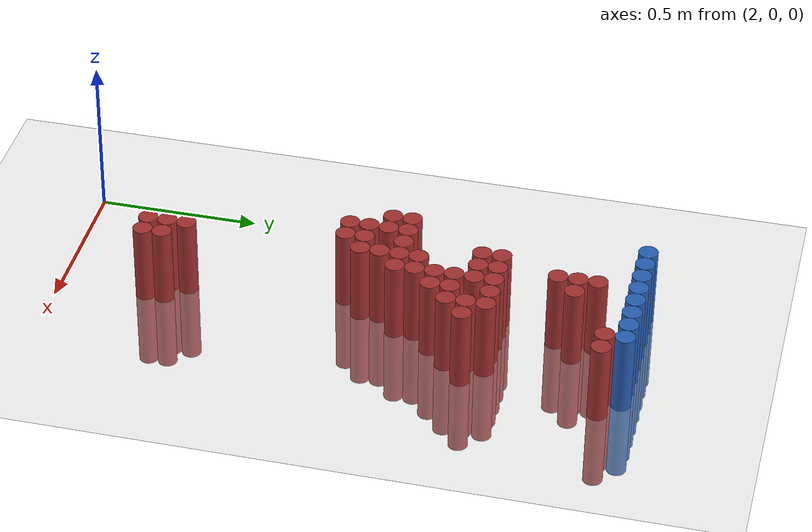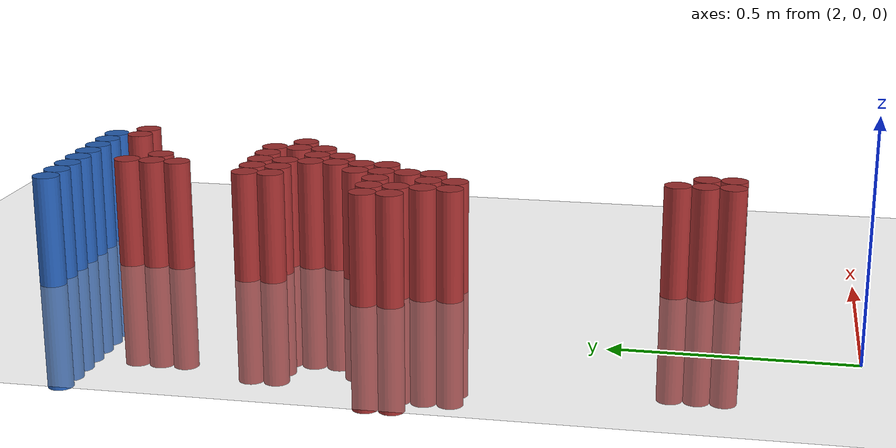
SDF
<sdf version="1.6">
 <world name="default">
  <model name="ground_plane">
   <static>1</static>
   <link name="link">
    <collision name="collision">
     <geometry><plane><normal>0 0 1</normal><size>100 100</size></plane></geometry>
     <surface><friction><ode><mu>100</mu><mu2>50</mu2></ode></friction></surface>
    </collision>
    <visual name="visual">
     <cast_shadows>0</cast_shadows>
     <geometry><plane><normal>0 0 1</normal><size>100 100</size></plane></geometry>
     <material>
      <script><uri>file://media/materials/scripts/gazebo.material</uri><name>Gazebo/Grey</name></script>
     </material>
    </visual>
   </link>
  </model>
  <model name="unit_cylinder_97">
   <static>1</static>
   <pose>2.190000 1.770000 0.000000 0.000000 0.000000 0.000000</pose>
   <link name="link">
    <inertial>
     <mass>1</mass>
     <inertia><ixx>0.145833</ixx><ixy>0</ixy><ixz>0</ixz><iyy>0.145833</iyy><iyz>0</iyz><izz>0.125</izz></inertia>
    </inertial>
    <collision name="collision">
     <geometry><cylinder><radius>0.030000</radius><length>0.5</length></cylinder></geometry>
    </collision>
    <visual name="visual">
     <geometry><cylinder><radius>0.030000</radius><length>0.5</length></cylinder></geometry>
     <material>
      <ambient>0.152000 0.379000 0.720000 1</ambient>
      <diffuse>0.152000 0.379000 0.720000 1</diffuse>
     </material>
     <material>
      <script><name>Gazebo/Grey</name><uri>file://media/materials/scripts/gazebo.material</uri></script>
     </material>
    </visual>
   </link>
  </model>
  <model name="unit_cylinder_98">
   <static>1</static>
   <pose>2.250000 1.770000 0.000000 0.000000 0.000000 0.000000</pose>
   <link name="link">
    <inertial>
     <mass>1</mass>
     <inertia><ixx>0.145833</ixx><ixy>0</ixy><ixz>0</ixz><iyy>0.145833</iyy><iyz>0</iyz><izz>0.125</izz></inertia>
    </inertial>
    <collision name="collision">
     <geometry><cylinder><radius>0.030000</radius><length>0.5</length></cylinder></geometry>
    </collision>
    <visual name="visual">
     <geometry><cylinder><radius>0.030000</radius><length>0.5</length></cylinder></geometry>
     <material>
      <ambient>0.152000 0.379000 0.720000 1</ambient>
      <diffuse>0.152000 0.379000 0.720000 1</diffuse>
     </material>
     <material>
      <script><name>Gazebo/Grey</name><uri>file://media/materials/scripts/gazebo.material</uri></script>
     </material>
    </visual>
   </link>
  </model>
  <model name="unit_cylinder_99">
   <static>1</static>
   <pose>2.310000 1.770000 0.000000 0.000000 0.000000 0.000000</pose>
   <link name="link">
    <inertial>
     <mass>1</mass>
     <inertia><ixx>0.145833</ixx><ixy>0</ixy><ixz>0</ixz><iyy>0.145833</iyy><iyz>0</iyz><izz>0.125</izz></inertia>
    </inertial>
    <collision name="collision">
     <geometry><cylinder><radius>0.030000</radius><length>0.5</length></cylinder></geometry>
    </collision>
    <visual name="visual">
     <geometry><cylinder><radius>0.030000</radius><length>0.5</length></cylinder></geometry>
     <material>
      <ambient>0.152000 0.379000 0.720000 1</ambient>
      <diffuse>0.152000 0.379000 0.720000 1</diffuse>
     </material>
     <material>
      <script><name>Gazebo/Grey</name><uri>file://media/materials/scripts/gazebo.material</uri></script>
     </material>
    </visual>
   </link>
  </model>
  <model name="unit_cylinder_100">
   <static>1</static>
   <pose>2.370000 1.770000 0.000000 0.000000 0.000000 0.000000</pose>
   <link name="link">
    <inertial>
     <mass>1</mass>
     <inertia><ixx>0.145833</ixx><ixy>0</ixy><ixz>0</ixz><iyy>0.145833</iyy><iyz>0</iyz><izz>0.125</izz></inertia>
    </inertial>
    <collision name="collision">
     <geometry><cylinder><radius>0.030000</radius><length>0.5</length></cylinder></geometry>
    </collision>
    <visual name="visual">
     <geometry><cylinder><radius>0.030000</radius><length>0.5</length></cylinder></geometry>
     <material>
      <ambient>0.152000 0.379000 0.720000 1</ambient>
      <diffuse>0.152000 0.379000 0.720000 1</diffuse>
     </material>
     <material>
      <script><name>Gazebo/Grey</name><uri>file://media/materials/scripts/gazebo.material</uri></script>
     </material>
    </visual>
   </link>
  </model>
  <model name="unit_cylinder_101">
   <static>1</static>
   <pose>2.430000 1.770000 0.000000 0.000000 0.000000 0.000000</pose>
   <link name="link">
    <inertial>
     <mass>1</mass>
     <inertia><ixx>0.145833</ixx><ixy>0</ixy><ixz>0</ixz><iyy>0.145833</iyy><iyz>0</iyz><izz>0.125</izz></inertia>
    </inertial>
    <collision name="collision">
     <geometry><cylinder><radius>0.030000</radius><length>0.5</length></cylinder></geometry>
    </collision>
    <visual name="visual">
     <geometry><cylinder><radius>0.030000</radius><length>0.5</length></cylinder></geometry>
     <material>
      <ambient>0.152000 0.379000 0.720000 1</ambient>
      <diffuse>0.152000 0.379000 0.720000 1</diffuse>
     </material>
     <material>
      <script><name>Gazebo/Grey</name><uri>file://media/materials/scripts/gazebo.material</uri></script>
     </material>
    </visual>
   </link>
  </model>
  <model name="unit_cylinder_102">
   <static>1</static>
   <pose>2.490000 1.770000 0.000000 0.000000 0.000000 0.000000</pose>
   <link name="link">
    <inertial>
     <mass>1</mass>
     <inertia><ixx>0.145833</ixx><ixy>0</ixy><ixz>0</ixz><iyy>0.145833</iyy><iyz>0</iyz><izz>0.125</izz></inertia>
    </inertial>
    <collision name="collision">
     <geometry><cylinder><radius>0.030000</radius><length>0.5</length></cylinder></geometry>
    </collision>
    <visual name="visual">
     <geometry><cylinder><radius>0.030000</radius><length>0.5</length></cylinder></geometry>
     <material>
      <ambient>0.152000 0.379000 0.720000 1</ambient>
      <diffuse>0.152000 0.379000 0.720000 1</diffuse>
     </material>
     <material>
      <script><name>Gazebo/Grey</name><uri>file://media/materials/scripts/gazebo.material</uri></script>
     </material>
    </visual>
   </link>
  </model>
  <model name="unit_cylinder_103">
   <static>1</static>
   <pose>2.550000 1.770000 0.000000 0.000000 0.000000 0.000000</pose>
   <link name="link">
    <inertial>
     <mass>1</mass>
     <inertia><ixx>0.145833</ixx><ixy>0</ixy><ixz>0</ixz><iyy>0.145833</iyy><iyz>0</iyz><izz>0.125</izz></inertia>
    </inertial>
    <collision name="collision">
     <geometry><cylinder><radius>0.030000</radius><length>0.5</length></cylinder></geometry>
    </collision>
    <visual name="visual">
     <geometry><cylinder><radius>0.030000</radius><length>0.5</length></cylinder></geometry>
     <material>
      <ambient>0.152000 0.379000 0.720000 1</ambient>
      <diffuse>0.152000 0.379000 0.720000 1</diffuse>
     </material>
     <material>
      <script><name>Gazebo/Grey</name><uri>file://media/materials/scripts/gazebo.material</uri></script>
     </material>
    </visual>
   </link>
  </model>
  <model name="unit_cylinder_104">
   <static>1</static>
   <pose>2.610000 1.770000 0.000000 0.000000 0.000000 0.000000</pose>
   <link name="link">
    <inertial>
     <mass>1</mass>
     <inertia><ixx>0.145833</ixx><ixy>0</ixy><ixz>0</ixz><iyy>0.145833</iyy><iyz>0</iyz><izz>0.125</izz></inertia>
    </inertial>
    <collision name="collision">
     <geometry><cylinder><radius>0.030000</radius><length>0.5</length></cylinder></geometry>
    </collision>
    <visual name="visual">
     <geometry><cylinder><radius>0.030000</radius><length>0.5</length></cylinder></geometry>
     <material>
      <ambient>0.152000 0.379000 0.720000 1</ambient>
      <diffuse>0.152000 0.379000 0.720000 1</diffuse>
     </material>
     <material>
      <script><name>Gazebo/Grey</name><uri>file://media/materials/scripts/gazebo.material</uri></script>
     </material>
    </visual>
   </link>
  </model>
  <model name="unit_cylinder_125">
   <static>1</static>
   <pose>2.610000 1.710000 0.000000 0.000000 0.000000 0.000000</pose>
   <link name="link">
    <inertial>
     <mass>1</mass>
     <inertia><ixx>0.145833</ixx><ixy>0</ixy><ixz>0</ixz><iyy>0.145833</iyy><iyz>0</iyz><izz>0.125</izz></inertia>
    </inertial>
    <collision name="collision">
     <geometry><cylinder><radius>0.030000</radius><length>0.5</length></cylinder></geometry>
    </collision>
    <visual name="visual">
     <geometry><cylinder><radius>0.030000</radius><length>0.5</length></cylinder></geometry>
     <material>
      <ambient>0.648000 0.192000 0.192000 1</ambient>
      <diffuse>0.648000 0.192000 0.192000 1</diffuse>
     </material>
     <material>
      <script><name>Gazebo/Grey</name><uri>file://media/materials/scripts/gazebo.material</uri></script>
     </material>
    </visual>
   </link>
  </model>
  <model name="unit_cylinder_126">
   <static>1</static>
   <pose>2.670000 1.710000 0.000000 0.000000 0.000000 0.000000</pose>
   <link name="link">
    <inertial>
     <mass>1</mass>
     <inertia><ixx>0.145833</ixx><ixy>0</ixy><ixz>0</ixz><iyy>0.145833</iyy><iyz>0</iyz><izz>0.125</izz></inertia>
    </inertial>
    <collision name="collision">
     <geometry><cylinder><radius>0.030000</radius><length>0.5</length></cylinder></geometry>
    </collision>
    <visual name="visual">
     <geometry><cylinder><radius>0.030000</radius><length>0.5</length></cylinder></geometry>
     <material>
      <ambient>0.648000 0.192000 0.192000 1</ambient>
      <diffuse>0.648000 0.192000 0.192000 1</diffuse>
     </material>
     <material>
      <script><name>Gazebo/Grey</name><uri>file://media/materials/scripts/gazebo.material</uri></script>
     </material>
    </visual>
   </link>
  </model>
  <model name="unit_cylinder_138">
   <static>1</static>
   <pose>2.370000 1.650000 0.000000 0.000000 0.000000 0.000000</pose>
   <link name="link">
    <inertial>
     <mass>1</mass>
     <inertia><ixx>0.145833</ixx><ixy>0</ixy><ixz>0</ixz><iyy>0.145833</iyy><iyz>0</iyz><izz>0.125</izz></inertia>
    </inertial>
    <collision name="collision">
     <geometry><cylinder><radius>0.030000</radius><length>0.5</length></cylinder></geometry>
    </collision>
    <visual name="visual">
     <geometry><cylinder><radius>0.030000</radius><length>0.5</length></cylinder></geometry>
     <material>
      <ambient>0.648000 0.192000 0.192000 1</ambient>
      <diffuse>0.648000 0.192000 0.192000 1</diffuse>
     </material>
     <material>
      <script><name>Gazebo/Grey</name><uri>file://media/materials/scripts/gazebo.material</uri></script>
     </material>
    </visual>
   </link>
  </model>
  <model name="unit_cylinder_140">
   <static>1</static>
   <pose>2.370000 1.590000 0.000000 0.000000 0.000000 0.000000</pose>
   <link name="link">
    <inertial>
     <mass>1</mass>
     <inertia><ixx>0.145833</ixx><ixy>0</ixy><ixz>0</ixz><iyy>0.145833</iyy><iyz>0</iyz><izz>0.125</izz></inertia>
    </inertial>
    <collision name="collision">
     <geometry><cylinder><radius>0.030000</radius><length>0.5</length></cylinder></geometry>
    </collision>
    <visual name="visual">
     <geometry><cylinder><radius>0.030000</radius><length>0.5</length></cylinder></geometry>
     <material>
      <ambient>0.648000 0.192000 0.192000 1</ambient>
      <diffuse>0.648000 0.192000 0.192000 1</diffuse>
     </material>
     <material>
      <script><name>Gazebo/Grey</name><uri>file://media/materials/scripts/gazebo.material</uri></script>
     </material>
    </visual>
   </link>
  </model>
  <model name="unit_cylinder_141">
   <static>1</static>
   <pose>2.430000 1.590000 0.000000 0.000000 0.000000 0.000000</pose>
   <link name="link">
    <inertial>
     <mass>1</mass>
     <inertia><ixx>0.145833</ixx><ixy>0</ixy><ixz>0</ixz><iyy>0.145833</iyy><iyz>0</iyz><izz>0.125</izz></inertia>
    </inertial>
    <collision name="collision">
     <geometry><cylinder><radius>0.030000</radius><length>0.5</length></cylinder></geometry>
    </collision>
    <visual name="visual">
     <geometry><cylinder><radius>0.030000</radius><length>0.5</length></cylinder></geometry>
     <material>
      <ambient>0.648000 0.192000 0.192000 1</ambient>
      <diffuse>0.648000 0.192000 0.192000 1</diffuse>
     </material>
     <material>
      <script><name>Gazebo/Grey</name><uri>file://media/materials/scripts/gazebo.material</uri></script>
     </material>
    </visual>
   </link>
  </model>
  <model name="unit_cylinder_142">
   <static>1</static>
   <pose>2.370000 1.530000 0.000000 0.000000 0.000000 0.000000</pose>
   <link name="link">
    <inertial>
     <mass>1</mass>
     <inertia><ixx>0.145833</ixx><ixy>0</ixy><ixz>0</ixz><iyy>0.145833</iyy><iyz>0</iyz><izz>0.125</izz></inertia>
    </inertial>
    <collision name="collision">
     <geometry><cylinder><radius>0.030000</radius><length>0.5</length></cylinder></geometry>
    </collision>
    <visual name="visual">
     <geometry><cylinder><radius>0.030000</radius><length>0.5</length></cylinder></geometry>
     <material>
      <ambient>0.648000 0.192000 0.192000 1</ambient>
      <diffuse>0.648000 0.192000 0.192000 1</diffuse>
     </material>
     <material>
      <script><name>Gazebo/Grey</name><uri>file://media/materials/scripts/gazebo.material</uri></script>
     </material>
    </visual>
   </link>
  </model>
  <model name="unit_cylinder_146">
   <static>1</static>
   <pose>2.310000 1.350000 0.000000 0.000000 0.000000 0.000000</pose>
   <link name="link">
    <inertial>
     <mass>1</mass>
     <inertia><ixx>0.145833</ixx><ixy>0</ixy><ixz>0</ixz><iyy>0.145833</iyy><iyz>0</iyz><izz>0.125</izz></inertia>
    </inertial>
    <collision name="collision">
     <geometry><cylinder><radius>0.030000</radius><length>0.5</length></cylinder></geometry>
    </collision>
    <visual name="visual">
     <geometry><cylinder><radius>0.030000</radius><length>0.5</length></cylinder></geometry>
     <material>
      <ambient>0.648000 0.192000 0.192000 1</ambient>
      <diffuse>0.648000 0.192000 0.192000 1</diffuse>
     </material>
     <material>
      <script><name>Gazebo/Grey</name><uri>file://media/materials/scripts/gazebo.material</uri></script>
     </material>
    </visual>
   </link>
  </model>
  <model name="unit_cylinder_147">
   <static>1</static>
   <pose>2.370000 1.350000 0.000000 0.000000 0.000000 0.000000</pose>
   <link name="link">
    <inertial>
     <mass>1</mass>
     <inertia><ixx>0.145833</ixx><ixy>0</ixy><ixz>0</ixz><iyy>0.145833</iyy><iyz>0</iyz><izz>0.125</izz></inertia>
    </inertial>
    <collision name="collision">
     <geometry><cylinder><radius>0.030000</radius><length>0.5</length></cylinder></geometry>
    </collision>
    <visual name="visual">
     <geometry><cylinder><radius>0.030000</radius><length>0.5</length></cylinder></geometry>
     <material>
      <ambient>0.648000 0.192000 0.192000 1</ambient>
      <diffuse>0.648000 0.192000 0.192000 1</diffuse>
     </material>
     <material>
      <script><name>Gazebo/Grey</name><uri>file://media/materials/scripts/gazebo.material</uri></script>
     </material>
    </visual>
   </link>
  </model>
  <model name="unit_cylinder_148">
   <static>1</static>
   <pose>2.430000 1.350000 0.000000 0.000000 0.000000 0.000000</pose>
   <link name="link">
    <inertial>
     <mass>1</mass>
     <inertia><ixx>0.145833</ixx><ixy>0</ixy><ixz>0</ixz><iyy>0.145833</iyy><iyz>0</iyz><izz>0.125</izz></inertia>
    </inertial>
    <collision name="collision">
     <geometry><cylinder><radius>0.030000</radius><length>0.5</length></cylinder></geometry>
    </collision>
    <visual name="visual">
     <geometry><cylinder><radius>0.030000</radius><length>0.5</length></cylinder></geometry>
     <material>
      <ambient>0.648000 0.192000 0.192000 1</ambient>
      <diffuse>0.648000 0.192000 0.192000 1</diffuse>
     </material>
     <material>
      <script><name>Gazebo/Grey</name><uri>file://media/materials/scripts/gazebo.material</uri></script>
     </material>
    </visual>
   </link>
  </model>
  <model name="unit_cylinder_149">
   <static>1</static>
   <pose>2.490000 1.350000 0.000000 0.000000 0.000000 0.000000</pose>
   <link name="link">
    <inertial>
     <mass>1</mass>
     <inertia><ixx>0.145833</ixx><ixy>0</ixy><ixz>0</ixz><iyy>0.145833</iyy><iyz>0</iyz><izz>0.125</izz></inertia>
    </inertial>
    <collision name="collision">
     <geometry><cylinder><radius>0.030000</radius><length>0.5</length></cylinder></geometry>
    </collision>
    <visual name="visual">
     <geometry><cylinder><radius>0.030000</radius><length>0.5</length></cylinder></geometry>
     <material>
      <ambient>0.648000 0.192000 0.192000 1</ambient>
      <diffuse>0.648000 0.192000 0.192000 1</diffuse>
     </material>
     <material>
      <script><name>Gazebo/Grey</name><uri>file://media/materials/scripts/gazebo.material</uri></script>
     </material>
    </visual>
   </link>
  </model>
  <model name="unit_cylinder_150">
   <static>1</static>
   <pose>2.550000 1.350000 0.000000 0.000000 0.000000 0.000000</pose>
   <link name="link">
    <inertial>
     <mass>1</mass>
     <inertia><ixx>0.145833</ixx><ixy>0</ixy><ixz>0</ixz><iyy>0.145833</iyy><iyz>0</iyz><izz>0.125</izz></inertia>
    </inertial>
    <collision name="collision">
     <geometry><cylinder><radius>0.030000</radius><length>0.5</length></cylinder></geometry>
    </collision>
    <visual name="visual">
     <geometry><cylinder><radius>0.030000</radius><length>0.5</length></cylinder></geometry>
     <material>
      <ambient>0.648000 0.192000 0.192000 1</ambient>
      <diffuse>0.648000 0.192000 0.192000 1</diffuse>
     </material>
     <material>
      <script><name>Gazebo/Grey</name><uri>file://media/materials/scripts/gazebo.material</uri></script>
     </material>
    </visual>
   </link>
  </model>
  <model name="unit_cylinder_151">
   <static>1</static>
   <pose>2.310000 1.290000 0.000000 0.000000 0.000000 0.000000</pose>
   <link name="link">
    <inertial>
     <mass>1</mass>
     <inertia><ixx>0.145833</ixx><ixy>0</ixy><ixz>0</ixz><iyy>0.145833</iyy><iyz>0</iyz><izz>0.125</izz></inertia>
    </inertial>
    <collision name="collision">
     <geometry><cylinder><radius>0.030000</radius><length>0.5</length></cylinder></geometry>
    </collision>
    <visual name="visual">
     <geometry><cylinder><radius>0.030000</radius><length>0.5</length></cylinder></geometry>
     <material>
      <ambient>0.648000 0.192000 0.192000 1</ambient>
      <diffuse>0.648000 0.192000 0.192000 1</diffuse>
     </material>
     <material>
      <script><name>Gazebo/Grey</name><uri>file://media/materials/scripts/gazebo.material</uri></script>
     </material>
    </visual>
   </link>
  </model>
  <model name="unit_cylinder_152">
   <static>1</static>
   <pose>2.370000 1.290000 0.000000 0.000000 0.000000 0.000000</pose>
   <link name="link">
    <inertial>
     <mass>1</mass>
     <inertia><ixx>0.145833</ixx><ixy>0</ixy><ixz>0</ixz><iyy>0.145833</iyy><iyz>0</iyz><izz>0.125</izz></inertia>
    </inertial>
    <collision name="collision">
     <geometry><cylinder><radius>0.030000</radius><length>0.5</length></cylinder></geometry>
    </collision>
    <visual name="visual">
     <geometry><cylinder><radius>0.030000</radius><length>0.5</length></cylinder></geometry>
     <material>
      <ambient>0.648000 0.192000 0.192000 1</ambient>
      <diffuse>0.648000 0.192000 0.192000 1</diffuse>
     </material>
     <material>
      <script><name>Gazebo/Grey</name><uri>file://media/materials/scripts/gazebo.material</uri></script>
     </material>
    </visual>
   </link>
  </model>
  <model name="unit_cylinder_153">
   <static>1</static>
   <pose>2.430000 1.290000 0.000000 0.000000 0.000000 0.000000</pose>
   <link name="link">
    <inertial>
     <mass>1</mass>
     <inertia><ixx>0.145833</ixx><ixy>0</ixy><ixz>0</ixz><iyy>0.145833</iyy><iyz>0</iyz><izz>0.125</izz></inertia>
    </inertial>
    <collision name="collision">
     <geometry><cylinder><radius>0.030000</radius><length>0.5</length></cylinder></geometry>
    </collision>
    <visual name="visual">
     <geometry><cylinder><radius>0.030000</radius><length>0.5</length></cylinder></geometry>
     <material>
      <ambient>0.648000 0.192000 0.192000 1</ambient>
      <diffuse>0.648000 0.192000 0.192000 1</diffuse>
     </material>
     <material>
      <script><name>Gazebo/Grey</name><uri>file://media/materials/scripts/gazebo.material</uri></script>
     </material>
    </visual>
   </link>
  </model>
  <model name="unit_cylinder_154">
   <static>1</static>
   <pose>2.550000 1.290000 0.000000 0.000000 0.000000 0.000000</pose>
   <link name="link">
    <inertial>
     <mass>1</mass>
     <inertia><ixx>0.145833</ixx><ixy>0</ixy><ixz>0</ixz><iyy>0.145833</iyy><iyz>0</iyz><izz>0.125</izz></inertia>
    </inertial>
    <collision name="collision">
     <geometry><cylinder><radius>0.030000</radius><length>0.5</length></cylinder></geometry>
    </collision>
    <visual name="visual">
     <geometry><cylinder><radius>0.030000</radius><length>0.5</length></cylinder></geometry>
     <material>
      <ambient>0.648000 0.192000 0.192000 1</ambient>
      <diffuse>0.648000 0.192000 0.192000 1</diffuse>
     </material>
     <material>
      <script><name>Gazebo/Grey</name><uri>file://media/materials/scripts/gazebo.material</uri></script>
     </material>
    </visual>
   </link>
  </model>
  <model name="unit_cylinder_155">
   <static>1</static>
   <pose>2.610000 1.290000 0.000000 0.000000 0.000000 0.000000</pose>
   <link name="link">
    <inertial>
     <mass>1</mass>
     <inertia><ixx>0.145833</ixx><ixy>0</ixy><ixz>0</ixz><iyy>0.145833</iyy><iyz>0</iyz><izz>0.125</izz></inertia>
    </inertial>
    <collision name="collision">
     <geometry><cylinder><radius>0.030000</radius><length>0.5</length></cylinder></geometry>
    </collision>
    <visual name="visual">
     <geometry><cylinder><radius>0.030000</radius><length>0.5</length></cylinder></geometry>
     <material>
      <ambient>0.648000 0.192000 0.192000 1</ambient>
      <diffuse>0.648000 0.192000 0.192000 1</diffuse>
     </material>
     <material>
      <script><name>Gazebo/Grey</name><uri>file://media/materials/scripts/gazebo.material</uri></script>
     </material>
    </visual>
   </link>
  </model>
  <model name="unit_cylinder_156">
   <static>1</static>
   <pose>2.430000 1.230000 0.000000 0.000000 0.000000 0.000000</pose>
   <link name="link">
    <inertial>
     <mass>1</mass>
     <inertia><ixx>0.145833</ixx><ixy>0</ixy><ixz>0</ixz><iyy>0.145833</iyy><iyz>0</iyz><izz>0.125</izz></inertia>
    </inertial>
    <collision name="collision">
     <geometry><cylinder><radius>0.030000</radius><length>0.5</length></cylinder></geometry>
    </collision>
    <visual name="visual">
     <geometry><cylinder><radius>0.030000</radius><length>0.5</length></cylinder></geometry>
     <material>
      <ambient>0.648000 0.192000 0.192000 1</ambient>
      <diffuse>0.648000 0.192000 0.192000 1</diffuse>
     </material>
     <material>
      <script><name>Gazebo/Grey</name><uri>file://media/materials/scripts/gazebo.material</uri></script>
     </material>
    </visual>
   </link>
  </model>
  <model name="unit_cylinder_157">
   <static>1</static>
   <pose>2.490000 1.230000 0.000000 0.000000 0.000000 0.000000</pose>
   <link name="link">
    <inertial>
     <mass>1</mass>
     <inertia><ixx>0.145833</ixx><ixy>0</ixy><ixz>0</ixz><iyy>0.145833</iyy><iyz>0</iyz><izz>0.125</izz></inertia>
    </inertial>
    <collision name="collision">
     <geometry><cylinder><radius>0.030000</radius><length>0.5</length></cylinder></geometry>
    </collision>
    <visual name="visual">
     <geometry><cylinder><radius>0.030000</radius><length>0.5</length></cylinder></geometry>
     <material>
      <ambient>0.648000 0.192000 0.192000 1</ambient>
      <diffuse>0.648000 0.192000 0.192000 1</diffuse>
     </material>
     <material>
      <script><name>Gazebo/Grey</name><uri>file://media/materials/scripts/gazebo.material</uri></script>
     </material>
    </visual>
   </link>
  </model>
  <model name="unit_cylinder_158">
   <static>1</static>
   <pose>2.550000 1.230000 0.000000 0.000000 0.000000 0.000000</pose>
   <link name="link">
    <inertial>
     <mass>1</mass>
     <inertia><ixx>0.145833</ixx><ixy>0</ixy><ixz>0</ixz><iyy>0.145833</iyy><iyz>0</iyz><izz>0.125</izz></inertia>
    </inertial>
    <collision name="collision">
     <geometry><cylinder><radius>0.030000</radius><length>0.5</length></cylinder></geometry>
    </collision>
    <visual name="visual">
     <geometry><cylinder><radius>0.030000</radius><length>0.5</length></cylinder></geometry>
     <material>
      <ambient>0.648000 0.192000 0.192000 1</ambient>
      <diffuse>0.648000 0.192000 0.192000 1</diffuse>
     </material>
     <material>
      <script><name>Gazebo/Grey</name><uri>file://media/materials/scripts/gazebo.material</uri></script>
     </material>
    </visual>
   </link>
  </model>
  <model name="unit_cylinder_159">
   <static>1</static>
   <pose>2.430000 1.170000 0.000000 0.000000 0.000000 0.000000</pose>
   <link name="link">
    <inertial>
     <mass>1</mass>
     <inertia><ixx>0.145833</ixx><ixy>0</ixy><ixz>0</ixz><iyy>0.145833</iyy><iyz>0</iyz><izz>0.125</izz></inertia>
    </inertial>
    <collision name="collision">
     <geometry><cylinder><radius>0.030000</radius><length>0.5</length></cylinder></geometry>
    </collision>
    <visual name="visual">
     <geometry><cylinder><radius>0.030000</radius><length>0.5</length></cylinder></geometry>
     <material>
      <ambient>0.648000 0.192000 0.192000 1</ambient>
      <diffuse>0.648000 0.192000 0.192000 1</diffuse>
     </material>
     <material>
      <script><name>Gazebo/Grey</name><uri>file://media/materials/scripts/gazebo.material</uri></script>
     </material>
    </visual>
   </link>
  </model>
  <model name="unit_cylinder_160">
   <static>1</static>
   <pose>2.490000 1.170000 0.000000 0.000000 0.000000 0.000000</pose>
   <link name="link">
    <inertial>
     <mass>1</mass>
     <inertia><ixx>0.145833</ixx><ixy>0</ixy><ixz>0</ixz><iyy>0.145833</iyy><iyz>0</iyz><izz>0.125</izz></inertia>
    </inertial>
    <collision name="collision">
     <geometry><cylinder><radius>0.030000</radius><length>0.5</length></cylinder></geometry>
    </collision>
    <visual name="visual">
     <geometry><cylinder><radius>0.030000</radius><length>0.5</length></cylinder></geometry>
     <material>
      <ambient>0.648000 0.192000 0.192000 1</ambient>
      <diffuse>0.648000 0.192000 0.192000 1</diffuse>
     </material>
     <material>
      <script><name>Gazebo/Grey</name><uri>file://media/materials/scripts/gazebo.material</uri></script>
     </material>
    </visual>
   </link>
  </model>
  <model name="unit_cylinder_161">
   <static>1</static>
   <pose>2.370000 1.110000 0.000000 0.000000 0.000000 0.000000</pose>
   <link name="link">
    <inertial>
     <mass>1</mass>
     <inertia><ixx>0.145833</ixx><ixy>0</ixy><ixz>0</ixz><iyy>0.145833</iyy><iyz>0</iyz><izz>0.125</izz></inertia>
    </inertial>
    <collision name="collision">
     <geometry><cylinder><radius>0.030000</radius><length>0.5</length></cylinder></geometry>
    </collision>
    <visual name="visual">
     <geometry><cylinder><radius>0.030000</radius><length>0.5</length></cylinder></geometry>
     <material>
      <ambient>0.648000 0.192000 0.192000 1</ambient>
      <diffuse>0.648000 0.192000 0.192000 1</diffuse>
     </material>
     <material>
      <script><name>Gazebo/Grey</name><uri>file://media/materials/scripts/gazebo.material</uri></script>
     </material>
    </visual>
   </link>
  </model>
  <model name="unit_cylinder_162">
   <static>1</static>
   <pose>2.430000 1.110000 0.000000 0.000000 0.000000 0.000000</pose>
   <link name="link">
    <inertial>
     <mass>1</mass>
     <inertia><ixx>0.145833</ixx><ixy>0</ixy><ixz>0</ixz><iyy>0.145833</iyy><iyz>0</iyz><izz>0.125</izz></inertia>
    </inertial>
    <collision name="collision">
     <geometry><cylinder><radius>0.030000</radius><length>0.5</length></cylinder></geometry>
    </collision>
    <visual name="visual">
     <geometry><cylinder><radius>0.030000</radius><length>0.5</length></cylinder></geometry>
     <material>
      <ambient>0.648000 0.192000 0.192000 1</ambient>
      <diffuse>0.648000 0.192000 0.192000 1</diffuse>
     </material>
     <material>
      <script><name>Gazebo/Grey</name><uri>file://media/materials/scripts/gazebo.material</uri></script>
     </material>
    </visual>
   </link>
  </model>
  <model name="unit_cylinder_163">
   <static>1</static>
   <pose>2.190000 1.050000 0.000000 0.000000 0.000000 0.000000</pose>
   <link name="link">
    <inertial>
     <mass>1</mass>
     <inertia><ixx>0.145833</ixx><ixy>0</ixy><ixz>0</ixz><iyy>0.145833</iyy><iyz>0</iyz><izz>0.125</izz></inertia>
    </inertial>
    <collision name="collision">
     <geometry><cylinder><radius>0.030000</radius><length>0.5</length></cylinder></geometry>
    </collision>
    <visual name="visual">
     <geometry><cylinder><radius>0.030000</radius><length>0.5</length></cylinder></geometry>
     <material>
      <ambient>0.648000 0.192000 0.192000 1</ambient>
      <diffuse>0.648000 0.192000 0.192000 1</diffuse>
     </material>
     <material>
      <script><name>Gazebo/Grey</name><uri>file://media/materials/scripts/gazebo.material</uri></script>
     </material>
    </visual>
   </link>
  </model>
  <model name="unit_cylinder_164">
   <static>1</static>
   <pose>2.250000 1.050000 0.000000 0.000000 0.000000 0.000000</pose>
   <link name="link">
    <inertial>
     <mass>1</mass>
     <inertia><ixx>0.145833</ixx><ixy>0</ixy><ixz>0</ixz><iyy>0.145833</iyy><iyz>0</iyz><izz>0.125</izz></inertia>
    </inertial>
    <collision name="collision">
     <geometry><cylinder><radius>0.030000</radius><length>0.5</length></cylinder></geometry>
    </collision>
    <visual name="visual">
     <geometry><cylinder><radius>0.030000</radius><length>0.5</length></cylinder></geometry>
     <material>
      <ambient>0.648000 0.192000 0.192000 1</ambient>
      <diffuse>0.648000 0.192000 0.192000 1</diffuse>
     </material>
     <material>
      <script><name>Gazebo/Grey</name><uri>file://media/materials/scripts/gazebo.material</uri></script>
     </material>
    </visual>
   </link>
  </model>
  <model name="unit_cylinder_165">
   <static>1</static>
   <pose>2.310000 1.050000 0.000000 0.000000 0.000000 0.000000</pose>
   <link name="link">
    <inertial>
     <mass>1</mass>
     <inertia><ixx>0.145833</ixx><ixy>0</ixy><ixz>0</ixz><iyy>0.145833</iyy><iyz>0</iyz><izz>0.125</izz></inertia>
    </inertial>
    <collision name="collision">
     <geometry><cylinder><radius>0.030000</radius><length>0.5</length></cylinder></geometry>
    </collision>
    <visual name="visual">
     <geometry><cylinder><radius>0.030000</radius><length>0.5</length></cylinder></geometry>
     <material>
      <ambient>0.648000 0.192000 0.192000 1</ambient>
      <diffuse>0.648000 0.192000 0.192000 1</diffuse>
     </material>
     <material>
      <script><name>Gazebo/Grey</name><uri>file://media/materials/scripts/gazebo.material</uri></script>
     </material>
    </visual>
   </link>
  </model>
  <model name="unit_cylinder_166">
   <static>1</static>
   <pose>2.370000 1.050000 0.000000 0.000000 0.000000 0.000000</pose>
   <link name="link">
    <inertial>
     <mass>1</mass>
     <inertia><ixx>0.145833</ixx><ixy>0</ixy><ixz>0</ixz><iyy>0.145833</iyy><iyz>0</iyz><izz>0.125</izz></inertia>
    </inertial>
    <collision name="collision">
     <geometry><cylinder><radius>0.030000</radius><length>0.5</length></cylinder></geometry>
    </collision>
    <visual name="visual">
     <geometry><cylinder><radius>0.030000</radius><length>0.5</length></cylinder></geometry>
     <material>
      <ambient>0.648000 0.192000 0.192000 1</ambient>
      <diffuse>0.648000 0.192000 0.192000 1</diffuse>
     </material>
     <material>
      <script><name>Gazebo/Grey</name><uri>file://media/materials/scripts/gazebo.material</uri></script>
     </material>
    </visual>
   </link>
  </model>
  <model name="unit_cylinder_167">
   <static>1</static>
   <pose>2.430000 1.050000 0.000000 0.000000 0.000000 0.000000</pose>
   <link name="link">
    <inertial>
     <mass>1</mass>
     <inertia><ixx>0.145833</ixx><ixy>0</ixy><ixz>0</ixz><iyy>0.145833</iyy><iyz>0</iyz><izz>0.125</izz></inertia>
    </inertial>
    <collision name="collision">
     <geometry><cylinder><radius>0.030000</radius><length>0.5</length></cylinder></geometry>
    </collision>
    <visual name="visual">
     <geometry><cylinder><radius>0.030000</radius><length>0.5</length></cylinder></geometry>
     <material>
      <ambient>0.648000 0.192000 0.192000 1</ambient>
      <diffuse>0.648000 0.192000 0.192000 1</diffuse>
     </material>
     <material>
      <script><name>Gazebo/Grey</name><uri>file://media/materials/scripts/gazebo.material</uri></script>
     </material>
    </visual>
   </link>
  </model>
  <model name="unit_cylinder_168">
   <static>1</static>
   <pose>2.190000 0.990000 0.000000 0.000000 0.000000 0.000000</pose>
   <link name="link">
    <inertial>
     <mass>1</mass>
     <inertia><ixx>0.145833</ixx><ixy>0</ixy><ixz>0</ixz><iyy>0.145833</iyy><iyz>0</iyz><izz>0.125</izz></inertia>
    </inertial>
    <collision name="collision">
     <geometry><cylinder><radius>0.030000</radius><length>0.5</length></cylinder></geometry>
    </collision>
    <visual name="visual">
     <geometry><cylinder><radius>0.030000</radius><length>0.5</length></cylinder></geometry>
     <material>
      <ambient>0.648000 0.192000 0.192000 1</ambient>
      <diffuse>0.648000 0.192000 0.192000 1</diffuse>
     </material>
     <material>
      <script><name>Gazebo/Grey</name><uri>file://media/materials/scripts/gazebo.material</uri></script>
     </material>
    </visual>
   </link>
  </model>
  <model name="unit_cylinder_169">
   <static>1</static>
   <pose>2.250000 0.990000 0.000000 0.000000 0.000000 0.000000</pose>
   <link name="link">
    <inertial>
     <mass>1</mass>
     <inertia><ixx>0.145833</ixx><ixy>0</ixy><ixz>0</ixz><iyy>0.145833</iyy><iyz>0</iyz><izz>0.125</izz></inertia>
    </inertial>
    <collision name="collision">
     <geometry><cylinder><radius>0.030000</radius><length>0.5</length></cylinder></geometry>
    </collision>
    <visual name="visual">
     <geometry><cylinder><radius>0.030000</radius><length>0.5</length></cylinder></geometry>
     <material>
      <ambient>0.648000 0.192000 0.192000 1</ambient>
      <diffuse>0.648000 0.192000 0.192000 1</diffuse>
     </material>
     <material>
      <script><name>Gazebo/Grey</name><uri>file://media/materials/scripts/gazebo.material</uri></script>
     </material>
    </visual>
   </link>
  </model>
  <model name="unit_cylinder_170">
   <static>1</static>
   <pose>2.370000 0.990000 0.000000 0.000000 0.000000 0.000000</pose>
   <link name="link">
    <inertial>
     <mass>1</mass>
     <inertia><ixx>0.145833</ixx><ixy>0</ixy><ixz>0</ixz><iyy>0.145833</iyy><iyz>0</iyz><izz>0.125</izz></inertia>
    </inertial>
    <collision name="collision">
     <geometry><cylinder><radius>0.030000</radius><length>0.5</length></cylinder></geometry>
    </collision>
    <visual name="visual">
     <geometry><cylinder><radius>0.030000</radius><length>0.5</length></cylinder></geometry>
     <material>
      <ambient>0.648000 0.192000 0.192000 1</ambient>
      <diffuse>0.648000 0.192000 0.192000 1</diffuse>
     </material>
     <material>
      <script><name>Gazebo/Grey</name><uri>file://media/materials/scripts/gazebo.material</uri></script>
     </material>
    </visual>
   </link>
  </model>
  <model name="unit_cylinder_171">
   <static>1</static>
   <pose>2.250000 0.930000 0.000000 0.000000 0.000000 0.000000</pose>
   <link name="link">
    <inertial>
     <mass>1</mass>
     <inertia><ixx>0.145833</ixx><ixy>0</ixy><ixz>0</ixz><iyy>0.145833</iyy><iyz>0</iyz><izz>0.125</izz></inertia>
    </inertial>
    <collision name="collision">
     <geometry><cylinder><radius>0.030000</radius><length>0.5</length></cylinder></geometry>
    </collision>
    <visual name="visual">
     <geometry><cylinder><radius>0.030000</radius><length>0.5</length></cylinder></geometry>
     <material>
      <ambient>0.648000 0.192000 0.192000 1</ambient>
      <diffuse>0.648000 0.192000 0.192000 1</diffuse>
     </material>
     <material>
      <script><name>Gazebo/Grey</name><uri>file://media/materials/scripts/gazebo.material</uri></script>
     </material>
    </visual>
   </link>
  </model>
  <model name="unit_cylinder_172">
   <static>1</static>
   <pose>2.310000 0.930000 0.000000 0.000000 0.000000 0.000000</pose>
   <link name="link">
    <inertial>
     <mass>1</mass>
     <inertia><ixx>0.145833</ixx><ixy>0</ixy><ixz>0</ixz><iyy>0.145833</iyy><iyz>0</iyz><izz>0.125</izz></inertia>
    </inertial>
    <collision name="collision">
     <geometry><cylinder><radius>0.030000</radius><length>0.5</length></cylinder></geometry>
    </collision>
    <visual name="visual">
     <geometry><cylinder><radius>0.030000</radius><length>0.5</length></cylinder></geometry>
     <material>
      <ambient>0.648000 0.192000 0.192000 1</ambient>
      <diffuse>0.648000 0.192000 0.192000 1</diffuse>
     </material>
     <material>
      <script><name>Gazebo/Grey</name><uri>file://media/materials/scripts/gazebo.material</uri></script>
     </material>
    </visual>
   </link>
  </model>
  <model name="unit_cylinder_173">
   <static>1</static>
   <pose>2.370000 0.930000 0.000000 0.000000 0.000000 0.000000</pose>
   <link name="link">
    <inertial>
     <mass>1</mass>
     <inertia><ixx>0.145833</ixx><ixy>0</ixy><ixz>0</ixz><iyy>0.145833</iyy><iyz>0</iyz><izz>0.125</izz></inertia>
    </inertial>
    <collision name="collision">
     <geometry><cylinder><radius>0.030000</radius><length>0.5</length></cylinder></geometry>
    </collision>
    <visual name="visual">
     <geometry><cylinder><radius>0.030000</radius><length>0.5</length></cylinder></geometry>
     <material>
      <ambient>0.648000 0.192000 0.192000 1</ambient>
      <diffuse>0.648000 0.192000 0.192000 1</diffuse>
     </material>
     <material>
      <script><name>Gazebo/Grey</name><uri>file://media/materials/scripts/gazebo.material</uri></script>
     </material>
    </visual>
   </link>
  </model>
  <model name="unit_cylinder_174">
   <static>1</static>
   <pose>2.250000 0.870000 0.000000 0.000000 0.000000 0.000000</pose>
   <link name="link">
    <inertial>
     <mass>1</mass>
     <inertia><ixx>0.145833</ixx><ixy>0</ixy><ixz>0</ixz><iyy>0.145833</iyy><iyz>0</iyz><izz>0.125</izz></inertia>
    </inertial>
    <collision name="collision">
     <geometry><cylinder><radius>0.030000</radius><length>0.5</length></cylinder></geometry>
    </collision>
    <visual name="visual">
     <geometry><cylinder><radius>0.030000</radius><length>0.5</length></cylinder></geometry>
     <material>
      <ambient>0.648000 0.192000 0.192000 1</ambient>
      <diffuse>0.648000 0.192000 0.192000 1</diffuse>
     </material>
     <material>
      <script><name>Gazebo/Grey</name><uri>file://media/materials/scripts/gazebo.material</uri></script>
     </material>
    </visual>
   </link>
  </model>
  <model name="unit_cylinder_175">
   <static>1</static>
   <pose>2.310000 0.870000 0.000000 0.000000 0.000000 0.000000</pose>
   <link name="link">
    <inertial>
     <mass>1</mass>
     <inertia><ixx>0.145833</ixx><ixy>0</ixy><ixz>0</ixz><iyy>0.145833</iyy><iyz>0</iyz><izz>0.125</izz></inertia>
    </inertial>
    <collision name="collision">
     <geometry><cylinder><radius>0.030000</radius><length>0.5</length></cylinder></geometry>
    </collision>
    <visual name="visual">
     <geometry><cylinder><radius>0.030000</radius><length>0.5</length></cylinder></geometry>
     <material>
      <ambient>0.648000 0.192000 0.192000 1</ambient>
      <diffuse>0.648000 0.192000 0.192000 1</diffuse>
     </material>
     <material>
      <script><name>Gazebo/Grey</name><uri>file://media/materials/scripts/gazebo.material</uri></script>
     </material>
    </visual>
   </link>
  </model>
  <model name="unit_cylinder_186">
   <static>1</static>
   <pose>2.370000 0.390000 0.000000 0.000000 0.000000 0.000000</pose>
   <link name="link">
    <inertial>
     <mass>1</mass>
     <inertia><ixx>0.145833</ixx><ixy>0</ixy><ixz>0</ixz><iyy>0.145833</iyy><iyz>0</iyz><izz>0.125</izz></inertia>
    </inertial>
    <collision name="collision">
     <geometry><cylinder><radius>0.030000</radius><length>0.5</length></cylinder></geometry>
    </collision>
    <visual name="visual">
     <geometry><cylinder><radius>0.030000</radius><length>0.5</length></cylinder></geometry>
     <material>
      <ambient>0.648000 0.192000 0.192000 1</ambient>
      <diffuse>0.648000 0.192000 0.192000 1</diffuse>
     </material>
     <material>
      <script><name>Gazebo/Grey</name><uri>file://media/materials/scripts/gazebo.material</uri></script>
     </material>
    </visual>
   </link>
  </model>
  <model name="unit_cylinder_190">
   <static>1</static>
   <pose>2.370000 0.330000 0.000000 0.000000 0.000000 0.000000</pose>
   <link name="link">
    <inertial>
     <mass>1</mass>
     <inertia><ixx>0.145833</ixx><ixy>0</ixy><ixz>0</ixz><iyy>0.145833</iyy><iyz>0</iyz><izz>0.125</izz></inertia>
    </inertial>
    <collision name="collision">
     <geometry><cylinder><radius>0.030000</radius><length>0.5</length></cylinder></geometry>
    </collision>
    <visual name="visual">
     <geometry><cylinder><radius>0.030000</radius><length>0.5</length></cylinder></geometry>
     <material>
      <ambient>0.648000 0.192000 0.192000 1</ambient>
      <diffuse>0.648000 0.192000 0.192000 1</diffuse>
     </material>
     <material>
      <script><name>Gazebo/Grey</name><uri>file://media/materials/scripts/gazebo.material</uri></script>
     </material>
    </visual>
   </link>
  </model>
  <model name="unit_cylinder_191">
   <static>1</static>
   <pose>2.430000 0.330000 0.000000 0.000000 0.000000 0.000000</pose>
   <link name="link">
    <inertial>
     <mass>1</mass>
     <inertia><ixx>0.145833</ixx><ixy>0</ixy><ixz>0</ixz><iyy>0.145833</iyy><iyz>0</iyz><izz>0.125</izz></inertia>
    </inertial>
    <collision name="collision">
     <geometry><cylinder><radius>0.030000</radius><length>0.5</length></cylinder></geometry>
    </collision>
    <visual name="visual">
     <geometry><cylinder><radius>0.030000</radius><length>0.5</length></cylinder></geometry>
     <material>
      <ambient>0.648000 0.192000 0.192000 1</ambient>
      <diffuse>0.648000 0.192000 0.192000 1</diffuse>
     </material>
     <material>
      <script><name>Gazebo/Grey</name><uri>file://media/materials/scripts/gazebo.material</uri></script>
     </material>
    </visual>
   </link>
  </model>
  <model name="unit_cylinder_192">
   <static>1</static>
   <pose>2.370000 0.270000 0.000000 0.000000 0.000000 0.000000</pose>
   <link name="link">
    <inertial>
     <mass>1</mass>
     <inertia><ixx>0.145833</ixx><ixy>0</ixy><ixz>0</ixz><iyy>0.145833</iyy><iyz>0</iyz><izz>0.125</izz></inertia>
    </inertial>
    <collision name="collision">
     <geometry><cylinder><radius>0.030000</radius><length>0.5</length></cylinder></geometry>
    </collision>
    <visual name="visual">
     <geometry><cylinder><radius>0.030000</radius><length>0.5</length></cylinder></geometry>
     <material>
      <ambient>0.648000 0.192000 0.192000 1</ambient>
      <diffuse>0.648000 0.192000 0.192000 1</diffuse>
     </material>
     <material>
      <script><name>Gazebo/Grey</name><uri>file://media/materials/scripts/gazebo.material</uri></script>
     </material>
    </visual>
   </link>
  </model>
  <model name="unit_cylinder_193">
   <static>1</static>
   <pose>2.430000 0.270000 0.000000 0.000000 0.000000 0.000000</pose>
   <link name="link">
    <inertial>
     <mass>1</mass>
     <inertia><ixx>0.145833</ixx><ixy>0</ixy><ixz>0</ixz><iyy>0.145833</iyy><iyz>0</iyz><izz>0.125</izz></inertia>
    </inertial>
    <collision name="collision">
     <geometry><cylinder><radius>0.030000</radius><length>0.5</length></cylinder></geometry>
    </collision>
    <visual name="visual">
     <geometry><cylinder><radius>0.030000</radius><length>0.5</length></cylinder></geometry>
     <material>
      <ambient>0.648000 0.192000 0.192000 1</ambient>
      <diffuse>0.648000 0.192000 0.192000 1</diffuse>
     </material>
     <material>
      <script><name>Gazebo/Grey</name><uri>file://media/materials/scripts/gazebo.material</uri></script>
     </material>
    </visual>
   </link>
  </model>
 </world>
</sdf>
